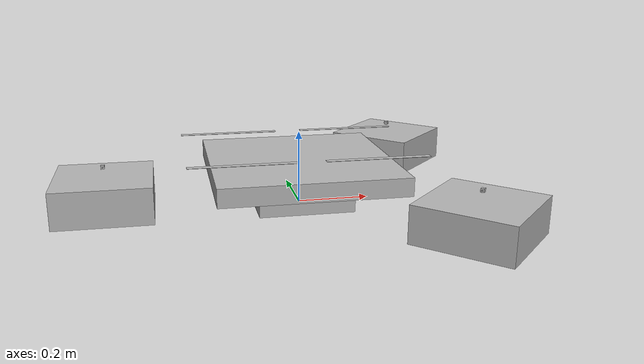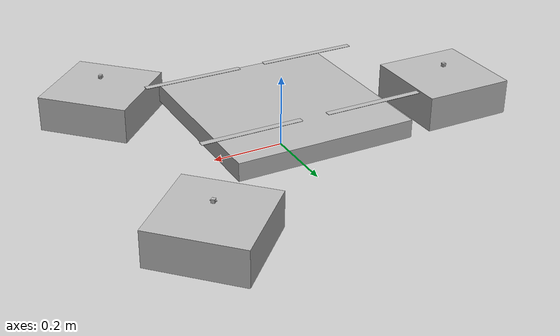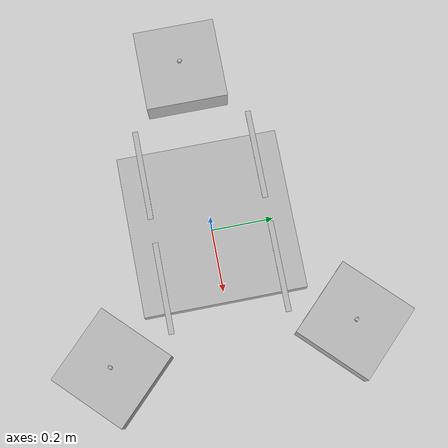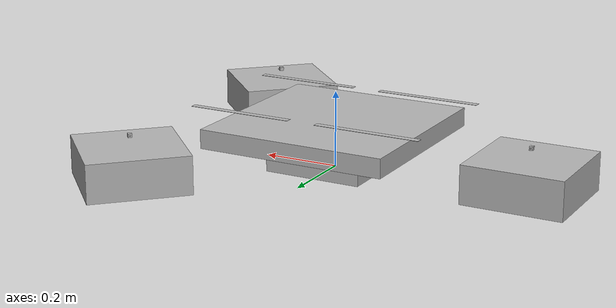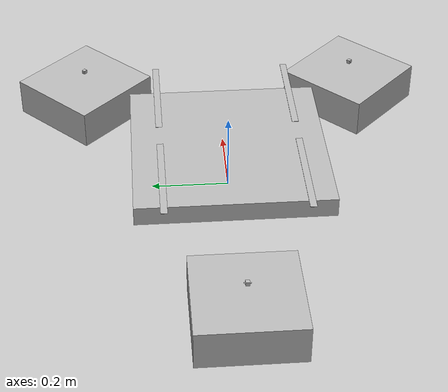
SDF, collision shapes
<?xml version="1.0" encoding="UTF-8"?>
<sdf version='1.9'>
  <model name='torsional_quad'>
    <pose>0 0 0.10363 0 0 0</pose>
    <self_collide>false</self_collide>
    <static>false</static>
    <link name="base_link">
     <inertial>
        <pose>0 0 0 0 0 0</pose>
        <mass>2.0</mass>
        <inertia>
          <ixx>0.0013</ixx>
          <iyy>0.0013</iyy>
          <izz>0.0025</izz>
        </inertia>
      </inertial>
      <gravity>true</gravity>
      <velocity_decay/>
      <visual name="base_link_visual">
        <pose>0 0 0  0 0 0</pose>
        <geometry>
          <mesh>
            <scale>1 1 1</scale>
            <uri>model://torsional_quad/meshes/x500_torsional.dae</uri>
          </mesh>
        </geometry>
      </visual>
      <collision name="base_link_collision">
        <pose> 0 0 0 0 0 0</pose>
        <geometry>
          <box>
            <size>0.50 0.50 0.05 </size>
          </box>
        </geometry>
        <surface>
          <contact>
            <ode>
              <min_depth>0.001</min_depth>
              <max_vel>0</max_vel>
            </ode>
          </contact>
          <friction>
            <ode/>
          </friction>
        </surface>
      </collision>
      <sensor name="air_pressure_sensor" type="air_pressure">
        <always_on>1</always_on>
        <update_rate>50</update_rate>
        <air_pressure>
          <pressure>
            <noise type="gaussian">
              <mean>0</mean>
              <stddev>0.01</stddev>
            </noise>
          </pressure>
        </air_pressure>
      </sensor>
      <sensor name="imu_sensor" type="imu">
        <always_on>1</always_on>
        <update_rate>250</update_rate>
      </sensor>
    </link>

<!-- Torsional Manipulator -->
    <link name="torsional_manipulator">
        <gravity>true</gravity>
        <self_collide>false</self_collide>
        <velocity_decay/>
        <pose>0 0 0 0 0 3.14159</pose>
        <inertial>
            <pose>0 0 -0.020 0 0 0</pose>
            <mass>0.194</mass>
            <inertia>
              <ixx>8.7628e-04</ixx>
              <iyy>8.7628e-04</iyy>
              <izz>0.0017</izz>
            </inertia>
        </inertial>
       <visual name="torsional_manipulator_visual">
        <pose>0 0 0 0 0 0</pose>
        <geometry>
          <mesh>
            <scale>1 1 1</scale>
            <uri>model://torsional_quad/meshes/manipulator_base.dae</uri>
          </mesh>
        </geometry>
      </visual>
      <collision name="torsional_manipulator_collision">
        <pose>0 0 -0.05 0 0 0 </pose>
        <geometry>
          <box>
            <size>0.26 0.26 0.1 </size>
          </box>
        </geometry>
        <surface>
          <contact>
            <ode>
              <min_depth>0.001</min_depth>
              <max_vel>0</max_vel>
            </ode>
          </contact>
          <friction>
            <ode/>
          </friction>
        </surface>
      </collision>
    </link>
    <joint name="torsional_manipulator_joint" type="fixed">
      <parent>base_link</parent>
      <child>torsional_manipulator</child>
      <pose> 0 0 0 0 0 0 </pose>
    </joint>
<!-- Torsional Manipulator END -->

<!-- EDF ARMS  -->
    <link name="edf_arm_1">
        <gravity>true</gravity>
        <self_collide>false</self_collide>
        <velocity_decay/>
        <pose>0.37512 -0.37512 0.0 0 0 2.35619</pose>
        <inertial>
            <pose>0.2335 0 0.0 0 0 0.0</pose>
            <mass>0.124</mass>
            <inertia>
              <ixx>2.015e-06</ixx>
              <iyy>0.0023</iyy>
              <izz>0.0023</izz>
            </inertia>
        </inertial>
       <visual name="edf_arm_1_visual">
        <pose>0 0 0 0 0 0</pose>
        <geometry>
          <mesh>
            <scale>1 1 1</scale>
            <uri>model://torsional_quad/meshes/edf_frame_arm.dae</uri>
          </mesh>
        </geometry>
      </visual>
      <collision name="edf_arm_1_collision">
        <pose>0 0 -0.05 0 0 0 </pose>
        <geometry>
          <box>
            <size>0.26 0.26 0.1 </size>
          </box>
        </geometry>
        <surface>
          <contact>
            <ode>
              <min_depth>0.001</min_depth>
              <max_vel>0</max_vel>
            </ode>
          </contact>
          <friction>
            <ode/>
          </friction>
        </surface>
      </collision>
    </link>
    <joint name="edf_arm_1_joint" type="fixed">
      <parent>torsional_manipulator</parent>
      <child>edf_arm_1</child>
      <pose> 0 0 0 0 0 0 </pose>
    </joint>
<!-- EDF ARMS END -->

<!-- EDF ARMS  -->
    <link name="edf_arm_2">
        <gravity>true</gravity>
        <self_collide>false</self_collide>
        <velocity_decay/>
        <pose> 0.37512 0.37512 0.00  0 0 -2.35619 </pose>
        <inertial>
            <pose>0.2335 0 0.0 0 0 0.0</pose>
            <mass>0.124</mass>
            <inertia>
              <ixx>2.015e-06</ixx>
              <iyy>0.0023</iyy>
              <izz>0.0023</izz>
            </inertia>
        </inertial>
       <visual name="edf_arm_2_visual">
        <pose>0 0 0 0 0 0</pose>
        <geometry>
          <mesh>
            <scale>1 1 1</scale>
            <uri>model://torsional_quad/meshes/edf_frame_arm.dae</uri>
          </mesh>
        </geometry>
      </visual>
      <collision name="edf_arm_2_collision">
        <pose>0 0 -0.05 0 0 0 </pose>
        <geometry>
          <box>
            <size>0.26 0.26 0.1 </size>
          </box>
        </geometry>
        <surface>
          <contact>
            <ode>
              <min_depth>0.001</min_depth>
              <max_vel>0</max_vel>
            </ode>
          </contact>
          <friction>
            <ode/>
          </friction>
        </surface>
      </collision>
    </link>
    <joint name="edf_arm_2_joint" type="fixed">
      <parent>torsional_manipulator</parent>
      <child>edf_arm_2</child>
      <pose> 0 0 0 0 0 0 </pose>
    </joint>
<!-- EDF ARMS END -->

<!-- EDF ARMS  -->
    <link name="edf_arm_3">
        <gravity>true</gravity>
        <self_collide>false</self_collide>
        <velocity_decay/>
        <pose>-0.53050 0 0.0 0 0 0.0</pose>
        <inertial>
            <pose>0.2335 0 0.0 0 0 0.0</pose>
            <mass>0.124</mass>
            <inertia>
              <ixx>2.015e-06</ixx>
              <iyy>0.0023</iyy>
              <izz>0.0023</izz>
            </inertia>
        </inertial>
       <visual name="edf_arm_3_visual">
        <pose>0 0 0 0 0 0</pose>
        <geometry>
          <mesh>
            <scale>1 1 1</scale>
            <uri>model://torsional_quad/meshes/edf_frame_arm.dae</uri>
          </mesh>
        </geometry>
      </visual>
      <collision name="edf_arm_3_collision">
        <pose>0 0 -0.05 0 0 0 </pose>
        <geometry>
          <box>
            <size>0.26 0.26 0.1 </size>
          </box>
        </geometry>
        <surface>
          <contact>
            <ode>
              <min_depth>0.001</min_depth>
              <max_vel>0</max_vel>
            </ode>
          </contact>
          <friction>
            <ode/>
          </friction>
        </surface>
      </collision>
    </link>
    <joint name="edf_arm_3_joint" type="fixed">
      <parent>torsional_manipulator</parent>
      <child>edf_arm_3</child>
      <pose> 0 0 0 0 0 0 </pose>
    </joint>
<!-- EDF ARMS END -->

<!-- Propellers definition -->
    <link name="rotor_0">
        <gravity>true</gravity>
        <self_collide>false</self_collide>
        <velocity_decay/>
        <pose>0.176876 -0.176876 0.06 0 0 0</pose>
        <inertial>
            <pose>0 0 -0.02 0 0 0</pose>
            <mass>0.064</mass>
            <inertia>
              <ixx>7.536e-06</ixx>
              <iyy>7.536e-06</iyy>
              <izz>6.407e-06</izz>
            </inertia>
        </inertial>
       <visual name="rotor_0_visual">
        <pose>0 0 0 0 0 0</pose>
        <geometry>
          <mesh>
            <scale>1 1 1</scale>
            <uri>model://x500_dual_200/meshes/holybro_propeller_ccw.dae</uri>
          </mesh>
        </geometry>
      </visual>
      <collision name="rotor_0_collision">
        <pose>0 0 0 0 0 0 </pose>
        <geometry>
          <box>
            <size>0.2792307692307692 0.016923076923076923 0.0008461538461538462</size>
          </box>
        </geometry>
        <surface>
          <contact>
            <ode>
              <min_depth>0.001</min_depth>
              <max_vel>0</max_vel>
            </ode>
          </contact>
          <friction>
            <ode/>
          </friction>
        </surface>
      </collision>
    </link>
    <joint name="rotor_0_joint" type="revolute">
      <parent>base_link</parent>
      <child>rotor_0</child>
      <axis>
        <xyz>0 0 1</xyz>
        <limit>
          <lower>-1e+16</lower>
          <upper>1e+16</upper>
        </limit>
        <dynamics>
          <spring_reference>0</spring_reference>
          <spring_stiffness>0</spring_stiffness>
        </dynamics>
      </axis>
    </joint>

    <link name="rotor_1">
        <gravity>true</gravity>
        <self_collide>false</self_collide>
        <velocity_decay/>
        <pose>-0.176876 0.176876 0.06 0 0 0</pose>
        <inertial>
            <pose>0 0 -0.02 0 0 0</pose>
            <mass>0.064</mass>
            <inertia>
              <ixx>7.536e-06</ixx>
              <iyy>7.536e-06</iyy>
              <izz>6.407e-06</izz>
            </inertia>
        </inertial>
       <visual name="rotor_1_visual">
        <pose>0 0 0 0 0 0</pose>
        <geometry>
          <mesh>
            <scale>1 1 1</scale>
            <uri>model://x500_dual_200/meshes/holybro_propeller_ccw.dae</uri>
          </mesh>
        </geometry>
      </visual>
      <collision name="rotor_1_collision">
        <pose>0 0 0 0 0 0 </pose>
        <geometry>
          <box>
            <size>0.2792307692307692 0.016923076923076923 0.0008461538461538462</size>
          </box>
        </geometry>
        <surface>
          <contact>
            <ode>
              <min_depth>0.001</min_depth>
              <max_vel>0</max_vel>
            </ode>
          </contact>
          <friction>
            <ode/>
          </friction>
        </surface>
      </collision>
    </link>
    <joint name="rotor_1_joint" type="revolute">
      <parent>base_link</parent>
      <child>rotor_1</child>
      <axis>
        <xyz>0 0 1</xyz>
        <limit>
          <lower>-1e+16</lower>
          <upper>1e+16</upper>
        </limit>
        <dynamics>
          <spring_reference>0</spring_reference>
          <spring_stiffness>0</spring_stiffness>
        </dynamics>
      </axis>
    </joint>

    <link name="rotor_2">
        <gravity>true</gravity>
        <self_collide>false</self_collide>
        <velocity_decay/>
        <pose> 0.176876 0.176876 0.06 0 0 0</pose>
        <inertial>
            <pose>0 0 -0.02 0 0 0</pose>
            <mass>0.064</mass>
            <inertia>
              <ixx>7.536e-06</ixx>
              <iyy>7.536e-06</iyy>
              <izz>6.407e-06</izz>
            </inertia>
        </inertial>
       <visual name="rotor_2_visual">
        <pose>0 0 0 0 0 0</pose>
        <geometry>
          <mesh>
            <scale>1 1 1</scale>
            <uri>model://x500_dual_200/meshes/holybro_propeller_cw.dae</uri>
          </mesh>
        </geometry>
      </visual>
      <collision name="rotor_2_collision">
        <pose>0 0 0 0 0 0 </pose>
        <geometry>
          <box>
            <size>0.2792307692307692 0.016923076923076923 0.0008461538461538462</size>
          </box>
        </geometry>
        <surface>
          <contact>
            <ode>
              <min_depth>0.001</min_depth>
              <max_vel>0</max_vel>
            </ode>
          </contact>
          <friction>
            <ode/>
          </friction>
        </surface>
      </collision>
    </link>
    <joint name="rotor_2_joint" type="revolute">
      <parent>base_link</parent>
      <child>rotor_2</child>
      <axis>
        <xyz>0 0 1</xyz>
        <limit>
          <lower>-1e+16</lower>
          <upper>1e+16</upper>
        </limit>
        <dynamics>
          <spring_reference>0</spring_reference>
          <spring_stiffness>0</spring_stiffness>
        </dynamics>
      </axis>
    </joint>

    <link name="rotor_3">
        <gravity>true</gravity>
        <self_collide>false</self_collide>
        <velocity_decay/>
        <pose> -0.176876 -0.176876 0.06 0 0 0</pose>
         <inertial>
            <pose>0 0 -0.02 0 0 0</pose>
            <mass>0.064</mass>
            <inertia>
              <ixx>7.536e-06</ixx>
              <iyy>7.536e-06</iyy>
              <izz>6.407e-06</izz>
            </inertia>
        </inertial>
       <visual name="rotor_3_visual">
        <pose>0 0 0 0 0 0</pose>
        <geometry>
          <mesh>
            <scale>1 1 1</scale>
            <uri>model://x500_dual_200/meshes/holybro_propeller_cw.dae</uri>
          </mesh>
        </geometry>
      </visual>
      <collision name="rotor_3_collision">
        <pose>0 0 0 0 0 0 </pose>
        <geometry>
          <box>
            <size>0.2792307692307692 0.016923076923076923 0.0008461538461538462</size>
          </box>
        </geometry>
        <surface>
          <contact>
            <ode>
              <min_depth>0.001</min_depth>
              <max_vel>0</max_vel>
            </ode>
          </contact>
          <friction>
            <ode/>
          </friction>
        </surface>
      </collision>
    </link>
    <joint name="rotor_3_joint" type="revolute">
      <parent>base_link</parent>
      <child>rotor_3</child>
      <axis>
        <xyz>0 0 1</xyz>
        <limit>
          <lower>-1e+16</lower>
          <upper>1e+16</upper>
        </limit>
        <dynamics>
          <spring_reference>0</spring_reference>
          <spring_stiffness>0</spring_stiffness>
        </dynamics>
      </axis>
    </joint>
<!-- Propellers definition END-->

    <!-- EDF -->
   <link name="edf_0_body">
        <gravity>true</gravity>
        <self_collide>false</self_collide>
        <velocity_decay/>
        <pose> 0.37512 -0.37512 0.025  0 0 -0.785398 </pose>
        <inertial>
            <mass>0.260</mass>
            <inertia>
              <ixx>8.13e-05</ixx>
              <iyy>15.29e-05</iyy>
              <izz>15.29e-05</izz>
            </inertia>
        </inertial>
       <visual name="edf_0_visual">
        <pose>0 0 0 0 0 0</pose>
        <geometry>
          <mesh>
            <scale>1 1 1</scale>
            <uri>model://torsional_quad/meshes/edf_housing.dae</uri>
          </mesh>
        </geometry>
      </visual>
      <collision name="edf_0_collision">
        <pose>0 0 0 0 0 0 </pose>
        <geometry>
          <box>
            <size>0.01 0.01 0.01</size>
          </box>
        </geometry>
        <surface>
          <contact>
            <ode>
              <min_depth>0.001</min_depth>
              <max_vel>0</max_vel>
            </ode>
          </contact>
          <friction>
            <ode/>
          </friction>
        </surface>
      </collision>
    </link>
    <joint name="edf_0_joint" type="revolute">
      <parent>base_link</parent>
      <child>edf_0_body</child>
      <pose>0 0 0 0 0 0 </pose>
      <axis>
        <xyz>0 0 1</xyz>
        <limit>
          <lower>-3.145159</lower>
          <upper>3.145159</upper>
        </limit>
        <dynamics>
          <friction>1.0</friction>
          <spring_reference>0</spring_reference>
          <spring_stiffness>0</spring_stiffness>
        </dynamics>
      </axis>
    </joint>

    <link name="rotor_4">
        <gravity>true</gravity>
        <self_collide>false</self_collide>
        <velocity_decay/>
        <pose> 0.37512 -0.37512 0.025  0 1.57 2.35619</pose>
        <inertial>
          <mass>0.025</mass>
          <inertia>
            <ixx>3.9146e-06</ixx>
            <iyy>3.9146e-06</iyy>
            <izz>7.8125e-06</izz>
          </inertia>
        </inertial>
       <visual name="rotor_4_visual">
        <pose>0 0 0 0 0 0</pose>
        <geometry>
          <mesh>
            <scale>1 1 1</scale>
            <uri>model://torsional_quad/meshes/edf_impeler.dae</uri>
          </mesh>
        </geometry>
      </visual>
      <collision name="rotor_4_collision">
        <pose>0 0 0 0 0 0 </pose>
        <geometry>
          <box>
            <size>0.0008461538461538462 0.016923076923076923 0.004</size>
          </box>
        </geometry>
        <surface>
          <contact>
            <ode>
              <min_depth>0.001</min_depth>
              <max_vel>0</max_vel>
            </ode>
          </contact>
          <friction>
            <ode/>
          </friction>
        </surface>
      </collision>
    </link>
    <joint name="rotor_4_joint" type="revolute">
      <parent>edf_0_body</parent>
      <child>rotor_4</child>
      <axis>
        <xyz>0 0 1</xyz>
        <limit>
          <lower>-1e+16</lower>
          <upper>1e+16</upper>
        </limit>
        <dynamics>
          <spring_reference>0</spring_reference>
          <spring_stiffness>0</spring_stiffness>
        </dynamics>
      </axis>
    </joint>

    <link name="edf_1_body">
        <gravity>true</gravity>
        <self_collide>false</self_collide>
        <velocity_decay/>
        <pose> 0.375120 0.37512 0.025  0 0 0.785398 </pose>
        <inertial>
            <mass>0.260</mass>
            <inertia>
              <ixx>8.13e-05</ixx>
              <iyy>15.29e-05</iyy>
              <izz>15.29e-05</izz>
            </inertia>
        </inertial>
       <visual name="edf_1_visual">
        <pose>0 0 0 0 0 0</pose>
        <geometry>
          <mesh>
            <scale>1 1 1</scale>
            <uri>model://torsional_quad/meshes/edf_housing.dae</uri>
          </mesh>
        </geometry>
      </visual>
      <collision name="edf_1_collision">
        <pose>0 0 0 0 0 0 </pose>
        <geometry>
          <box>
            <size>0.01 0.01 0.01</size>
          </box>
        </geometry>
        <surface>
          <contact>
            <ode>
              <min_depth>0.001</min_depth>
              <max_vel>0</max_vel>
            </ode>
          </contact>
          <friction>
            <ode/>
          </friction>
        </surface>
      </collision>
    </link>
    <joint name="edf_1_joint" type="revolute">
      <parent>base_link</parent>
      <child>edf_1_body</child>
      <pose>0 0 0 0 0 0 </pose>
      <axis>
        <xyz>0 0 1</xyz>
        <limit>
          <lower>-3.145159</lower>
          <upper>3.145159</upper>
        </limit>
        <dynamics>
          <friction>1.0</friction>
          <spring_reference>0</spring_reference>
          <spring_stiffness>0</spring_stiffness>
        </dynamics>
      </axis>
    </joint>

    <link name="rotor_5">
        <gravity>true</gravity>
        <self_collide>false</self_collide>
        <velocity_decay/>
        <pose> 0.37512 0.37512 0.025  0 1.57 -2.35619 </pose>
        <inertial>
          <mass>0.025</mass>
          <inertia>
            <ixx>3.9146e-06</ixx>
            <iyy>3.9146e-06</iyy>
            <izz>7.8125e-06</izz>
          </inertia>
        </inertial>
       <visual name="rotor_5_visual">
        <pose>0 0 0 0 0 0</pose>
        <geometry>
          <mesh>
            <scale>1 1 1</scale>
            <uri>model://torsional_quad/meshes/edf_impeler.dae</uri>
          </mesh>
        </geometry>
      </visual>
      <collision name="rotor_5_collision">
        <pose>0 0 0 0 0 0 </pose>
        <geometry>
          <box>
            <size>0.0008461538461538462 0.016923076923076923 0.004</size>
          </box>
        </geometry>
        <surface>
          <contact>
            <ode>
              <min_depth>0.001</min_depth>
              <max_vel>0</max_vel>
            </ode>
          </contact>
          <friction>
            <ode/>
          </friction>
        </surface>
      </collision>
    </link>
    <joint name="rotor_5_joint" type="revolute">
      <parent>edf_1_body</parent>
      <child>rotor_5</child>
      <axis>
        <xyz>0 0 1</xyz>
        <limit>
          <lower>-1e+16</lower>
          <upper>1e+16</upper>
        </limit>
        <dynamics>
          <spring_reference>0</spring_reference>
          <spring_stiffness>0</spring_stiffness>
        </dynamics>
      </axis>
    </joint>

    <link name="edf_2_body">
        <gravity>true</gravity>
        <self_collide>false</self_collide>
        <velocity_decay/>
        <pose>-0.53050 0 0.025 0 0 3.14159</pose>
        <inertial>
            <mass>0.260</mass>
            <inertia>
              <ixx>8.13e-05</ixx>
              <iyy>15.29e-05</iyy>
              <izz>15.29e-05</izz>
            </inertia>
        </inertial>
       <visual name="edf_2_visual">
        <pose>0 0 0 0 0 0</pose>
        <geometry>
          <mesh>
            <scale>1 1 1</scale>
            <uri>model://torsional_quad/meshes/edf_housing.dae</uri>
          </mesh>
        </geometry>
      </visual>
      <collision name="edf_2_collision">
        <pose>0 0 0 0 0 0 </pose>
        <geometry>
          <box>
            <size>0.01 0.01 0.01</size>
          </box>
        </geometry>
        <surface>
          <contact>
            <ode>
              <min_depth>0.001</min_depth>
              <max_vel>0</max_vel>
            </ode>
          </contact>
          <friction>
            <ode/>
          </friction>
        </surface>
      </collision>
    </link>
    <joint name="edf_2_joint" type="revolute">
      <parent>base_link</parent>
      <child>edf_2_body</child>
      <pose> 0 0 0 0 0 0 </pose>
      <axis>
        <xyz>0 0 1</xyz>
        <limit>
          <lower>-3.145159</lower>
          <upper>3.145159</upper>
        </limit>
        <dynamics>
          <friction>1.0</friction>
          <spring_reference>0</spring_reference>
          <spring_stiffness>0</spring_stiffness>
        </dynamics>
      </axis>
    </joint>

    <link name="rotor_6">
        <gravity>true</gravity>
        <self_collide>false</self_collide>
        <velocity_decay/>
        <pose>-0.53050 0 0.025 0 1.57 0</pose>
        <inertial>
          <mass>0.025</mass>
          <inertia>
            <ixx>3.9146e-06</ixx>
            <iyy>3.9146e-06</iyy>
            <izz>7.8125e-06</izz>
          </inertia>
        </inertial>
       <visual name="rotor_6_visual">
        <pose>0 0 0 0 0 0</pose>
        <geometry>
          <mesh>
            <scale>1 1 1</scale>
            <uri>model://torsional_quad/meshes/edf_impeler.dae</uri>
          </mesh>
        </geometry>
      </visual>
      <collision name="rotor_6_collision">
        <pose>0 0 0 0 0 0 </pose>
        <geometry>
          <box>
            <size>0.0008461538461538462 0.016923076923076923 0.004</size>
          </box>
        </geometry>
        <surface>
          <contact>
            <ode>
              <min_depth>0.001</min_depth>
              <max_vel>0</max_vel>
            </ode>
          </contact>
          <friction>
            <ode/>
          </friction>
        </surface>
      </collision>
    </link>
    <joint name="rotor_6_joint" type="revolute">
      <parent>edf_2_body</parent>
      <child>rotor_6</child>
      <axis>
        <xyz>0 0 1</xyz>
        <limit>
          <lower>-1e+16</lower>
          <upper>1e+16</upper>
        </limit>
        <dynamics>
          <spring_reference>0</spring_reference>
          <spring_stiffness>0</spring_stiffness>
        </dynamics>
      </axis>
    </joint>
    <!-- EDF END -->

   <plugin filename="gz-sim-multicopter-motor-model-system" name="gz::sim::systems::MulticopterMotorModel">
      <jointName>rotor_0_joint</jointName>
      <linkName>rotor_0</linkName>
      <turningDirection>ccw</turningDirection>
      <timeConstantUp>0.0125</timeConstantUp>
      <timeConstantDown>0.025</timeConstantDown>
      <maxRotVelocity>1225.22</maxRotVelocity>
      <motorConstant>11.1913e-06</motorConstant>
      <momentConstant>0.016</momentConstant>
      <commandSubTopic>command/motor_speed</commandSubTopic>
      <motorNumber>0</motorNumber>
      <rotorDragCoefficient>8.06428e-05</rotorDragCoefficient>
      <rollingMomentCoefficient>1e-06</rollingMomentCoefficient>
      <rotorVelocitySlowdownSim>10</rotorVelocitySlowdownSim>
      <motorType>velocity</motorType>
    </plugin>
    <plugin filename="gz-sim-multicopter-motor-model-system" name="gz::sim::systems::MulticopterMotorModel">
      <jointName>rotor_1_joint</jointName>
      <linkName>rotor_1</linkName>
      <turningDirection>ccw</turningDirection>
      <timeConstantUp>0.0125</timeConstantUp>
      <timeConstantDown>0.025</timeConstantDown>
      <maxRotVelocity>1225.22</maxRotVelocity>
      <motorConstant>11.1913e-06</motorConstant>
      <momentConstant>0.016</momentConstant>
      <commandSubTopic>command/motor_speed</commandSubTopic>
      <motorNumber>1</motorNumber>
      <rotorDragCoefficient>8.06428e-05</rotorDragCoefficient>
      <rollingMomentCoefficient>1e-06</rollingMomentCoefficient>
      <rotorVelocitySlowdownSim>10</rotorVelocitySlowdownSim>
      <motorType>velocity</motorType>
    </plugin>
    <plugin filename="gz-sim-multicopter-motor-model-system" name="gz::sim::systems::MulticopterMotorModel">
      <jointName>rotor_2_joint</jointName>
      <linkName>rotor_2</linkName>
      <turningDirection>cw</turningDirection>
      <timeConstantUp>0.0125</timeConstantUp>
      <timeConstantDown>0.025</timeConstantDown>
      <maxRotVelocity>1225.22</maxRotVelocity>
      <motorConstant>11.1913e-06</motorConstant>
      <momentConstant>0.016</momentConstant>
      <commandSubTopic>command/motor_speed</commandSubTopic>
      <motorNumber>2</motorNumber>
      <rotorDragCoefficient>8.06428e-05</rotorDragCoefficient>
      <rollingMomentCoefficient>1e-06</rollingMomentCoefficient>
      <rotorVelocitySlowdownSim>10</rotorVelocitySlowdownSim>
      <motorType>velocity</motorType>
    </plugin>
    <plugin filename="gz-sim-multicopter-motor-model-system" name="gz::sim::systems::MulticopterMotorModel">
      <jointName>rotor_3_joint</jointName>
      <linkName>rotor_3</linkName>
      <turningDirection>cw</turningDirection>
      <timeConstantUp>0.0125</timeConstantUp>
      <timeConstantDown>0.025</timeConstantDown>
      <maxRotVelocity>1225.22</maxRotVelocity>
      <motorConstant>11.1913e-06</motorConstant>
      <momentConstant>0.016</momentConstant>
      <commandSubTopic>command/motor_speed</commandSubTopic>
      <motorNumber>3</motorNumber>
      <rotorDragCoefficient>8.06428e-05</rotorDragCoefficient>
      <rollingMomentCoefficient>1e-06</rollingMomentCoefficient>
      <rotorVelocitySlowdownSim>10</rotorVelocitySlowdownSim>
      <motorType>velocity</motorType>
    </plugin>

    <!-- EDFs -->

    <plugin filename="gz-sim-multicopter-motor-model-system" name="gz::sim::systems::MulticopterMotorModel">
      <jointName>rotor_4_joint</jointName>
      <linkName>rotor_4</linkName>
      <turningDirection>cw</turningDirection>
      <timeConstantUp>0.0125</timeConstantUp>
      <timeConstantDown>0.025</timeConstantDown>
      <maxRotVelocity>1000.0</maxRotVelocity>
      <motorConstant>8.54858e-06</motorConstant>
      <momentConstant>0.016</momentConstant>
      <commandSubTopic>command/motor_speed</commandSubTopic>
      <motorNumber>4</motorNumber>
      <rotorDragCoefficient>8.06428e-05</rotorDragCoefficient>
      <rollingMomentCoefficient>1e-06</rollingMomentCoefficient>
      <rotorVelocitySlowdownSim>10</rotorVelocitySlowdownSim>
      <motorType>velocity</motorType>
    </plugin>

    <plugin filename="gz-sim-multicopter-motor-model-system" name="gz::sim::systems::MulticopterMotorModel">
      <jointName>rotor_5_joint</jointName>
      <linkName>rotor_5</linkName>
      <turningDirection>cw</turningDirection>
      <timeConstantUp>0.0125</timeConstantUp>
      <timeConstantDown>0.025</timeConstantDown>
      <maxRotVelocity>1000.0</maxRotVelocity>
      <motorConstant>8.54858e-06</motorConstant>
      <momentConstant>0.016</momentConstant>
      <commandSubTopic>command/motor_speed</commandSubTopic>
      <motorNumber>5</motorNumber>
      <rotorDragCoefficient>8.06428e-05</rotorDragCoefficient>
      <rollingMomentCoefficient>1e-06</rollingMomentCoefficient>
      <rotorVelocitySlowdownSim>10</rotorVelocitySlowdownSim>
      <motorType>velocity</motorType>
    </plugin>

    <plugin filename="gz-sim-multicopter-motor-model-system" name="gz::sim::systems::MulticopterMotorModel">
      <jointName>rotor_6_joint</jointName>
      <linkName>rotor_6</linkName>
      <turningDirection>cw</turningDirection>
      <timeConstantUp>0.0125</timeConstantUp>
      <timeConstantDown>0.025</timeConstantDown>
      <maxRotVelocity>1000.0</maxRotVelocity>
      <motorConstant>8.54858e-06</motorConstant>
      <momentConstant>0.016</momentConstant>
      <commandSubTopic>command/motor_speed</commandSubTopic>
      <motorNumber>6</motorNumber>
      <rotorDragCoefficient>8.06428e-05</rotorDragCoefficient>
      <rollingMomentCoefficient>1e-06</rollingMomentCoefficient>
      <rotorVelocitySlowdownSim>10</rotorVelocitySlowdownSim>
      <motorType>velocity</motorType>
    </plugin>

<!-- EDFS Servos-->

    <plugin
      filename="gz-sim-joint-position-controller-system" name="gz::sim::systems::JointPositionController">
      <joint_name>edf_0_joint"</joint_name>
      <sub_topic>servo_0</sub_topic>
      <p_gain>10.0</p_gain>
    </plugin>

    <plugin
      filename="gz-sim-joint-position-controller-system" name="gz::sim::systems::JointPositionController">
      <joint_name>edf_1_joint"</joint_name>
      <sub_topic>servo_1</sub_topic>
      <p_gain>10.0</p_gain>
    </plugin>

    <plugin
      filename="gz-sim-joint-position-controller-system" name="gz::sim::systems::JointPositionController">
      <joint_name>edf_2_joint"</joint_name>
      <sub_topic>servo_2</sub_topic>
      <p_gain>10.0</p_gain>
    </plugin>

  </model>
</sdf>
